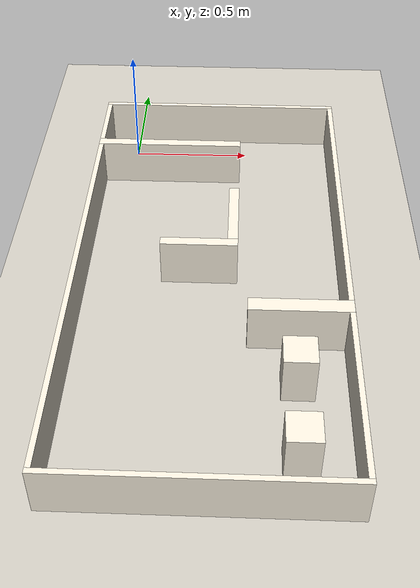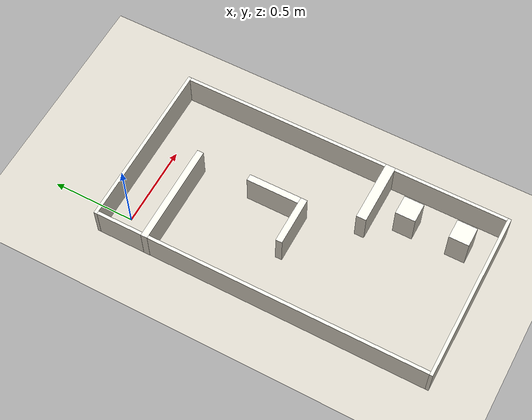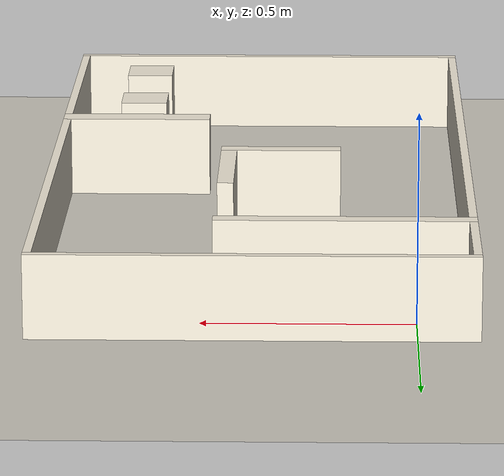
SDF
<?xml version="1.0" ?>
<sdf version="1.8">
  <world name="world2">
    <physics name="1ms" type="ignored">
      <max_step_size>0.001</max_step_size>
      <real_time_factor>1.0</real_time_factor>
    </physics>

    <plugin filename="gz-sim-physics-system" name="gz::sim::systems::Physics"/>
    <plugin filename="gz-sim-sensors-system" name="gz::sim::systems::Sensors">
      <render_engine>ogre2</render_engine>
    </plugin>
    <plugin filename="gz-sim-user-commands-system" name="gz::sim::systems::UserCommands"/>
    <plugin filename="gz-sim-scene-broadcaster-system" name="gz::sim::systems::SceneBroadcaster"/>
    <plugin filename="gz-sim-imu-system" name="gz::sim::systems::Imu"/>

    <light type="directional" name="sun">
      <cast_shadows>true</cast_shadows>
      <pose>10 10 12 0 0 0</pose>
      <diffuse>0.9 0.9 0.9 1</diffuse>
      <specular>0.6 0.6 0.6 1</specular>
      <attenuation>
        <range>1000</range>
        <constant>0.9</constant>
        <linear>0.01</linear>
        <quadratic>0.001</quadratic>
      </attenuation>
      <direction>-0.5 -0.3 -0.9</direction>
    </light>

    <model name="ground_plane">
      <static>true</static>
      <link name="link">
        <collision name="collision">
          <geometry><plane><normal>0 0 1</normal><size>100 100</size></plane></geometry>
        </collision>
        <visual name="visual">
          <geometry><plane><normal>0 0 1</normal><size>100 100</size></plane></geometry>
          <material><ambient>0.78 0.76 0.72 1</ambient><diffuse>0.82 0.80 0.76 1</diffuse></material>
        </visual>
      </link>
    </model>

    <model name="world2_env">
      <static>true</static>
      <link name="link">
        <pose>0 0 0 0 0 0</pose>
        <collision name="wall_0000">
          <pose>0.3760 0.1210 0.1000 0 0 0</pose>
          <geometry><box><size>1.0400 0.0200 0.2000</size></box></geometry>
        </collision>
        <visual name="wall_0000_v">
          <pose>0.3760 0.1210 0.1000 0 0 0</pose>
          <geometry><box><size>1.0400 0.0200 0.2000</size></box></geometry>
          <material><ambient>0.96 0.93 0.85 1</ambient><diffuse>0.98 0.95 0.88 1</diffuse></material>
        </visual>
        <collision name="wall_0001">
          <pose>-0.1340 -0.0290 0.1000 0 0 0</pose>
          <geometry><box><size>0.0200 0.2800 0.2000</size></box></geometry>
        </collision>
        <visual name="wall_0001_v">
          <pose>-0.1340 -0.0290 0.1000 0 0 0</pose>
          <geometry><box><size>0.0200 0.2800 0.2000</size></box></geometry>
          <material><ambient>0.96 0.93 0.85 1</ambient><diffuse>0.98 0.95 0.88 1</diffuse></material>
        </visual>
        <collision name="wall_0002">
          <pose>0.1660 -0.1890 0.1000 0 0 0</pose>
          <geometry><box><size>0.6200 0.0400 0.2000</size></box></geometry>
        </collision>
        <visual name="wall_0002_v">
          <pose>0.1660 -0.1890 0.1000 0 0 0</pose>
          <geometry><box><size>0.6200 0.0400 0.2000</size></box></geometry>
          <material><ambient>0.96 0.93 0.85 1</ambient><diffuse>0.98 0.95 0.88 1</diffuse></material>
        </visual>
        <collision name="wall_0003">
          <pose>0.4560 -0.6690 0.1000 0 0 0</pose>
          <geometry><box><size>0.0400 0.3200 0.2000</size></box></geometry>
        </collision>
        <visual name="wall_0003_v">
          <pose>0.4560 -0.6690 0.1000 0 0 0</pose>
          <geometry><box><size>0.0400 0.3200 0.2000</size></box></geometry>
          <material><ambient>0.96 0.93 0.85 1</ambient><diffuse>0.98 0.95 0.88 1</diffuse></material>
        </visual>
        <collision name="wall_0004">
          <pose>0.3260 -0.8490 0.1000 0 0 0</pose>
          <geometry><box><size>0.3000 0.0400 0.2000</size></box></geometry>
        </collision>
        <visual name="wall_0004_v">
          <pose>0.3260 -0.8490 0.1000 0 0 0</pose>
          <geometry><box><size>0.3000 0.0400 0.2000</size></box></geometry>
          <material><ambient>0.96 0.93 0.85 1</ambient><diffuse>0.98 0.95 0.88 1</diffuse></material>
        </visual>
        <collision name="wall_0005">
          <pose>0.8860 -0.5190 0.1000 0 0 0</pose>
          <geometry><box><size>0.0200 1.2600 0.2000</size></box></geometry>
        </collision>
        <visual name="wall_0005_v">
          <pose>0.8860 -0.5190 0.1000 0 0 0</pose>
          <geometry><box><size>0.0200 1.2600 0.2000</size></box></geometry>
          <material><ambient>0.96 0.93 0.85 1</ambient><diffuse>0.98 0.95 0.88 1</diffuse></material>
        </visual>
        <collision name="wall_0006">
          <pose>0.7060 -1.1790 0.1000 0 0 0</pose>
          <geometry><box><size>0.3800 0.0600 0.2000</size></box></geometry>
        </collision>
        <visual name="wall_0006_v">
          <pose>0.7060 -1.1790 0.1000 0 0 0</pose>
          <geometry><box><size>0.3800 0.0600 0.2000</size></box></geometry>
          <material><ambient>0.96 0.93 0.85 1</ambient><diffuse>0.98 0.95 0.88 1</diffuse></material>
        </visual>
        <collision name="wall_0007">
          <pose>0.6960 -1.3890 0.1000 0 0 0</pose>
          <geometry><box><size>0.1200 0.1200 0.2000</size></box></geometry>
        </collision>
        <visual name="wall_0007_v">
          <pose>0.6960 -1.3890 0.1000 0 0 0</pose>
          <geometry><box><size>0.1200 0.1200 0.2000</size></box></geometry>
          <material><ambient>0.96 0.93 0.85 1</ambient><diffuse>0.98 0.95 0.88 1</diffuse></material>
        </visual>
        <collision name="wall_0008">
          <pose>0.6960 -1.7090 0.1000 0 0 0</pose>
          <geometry><box><size>0.1200 0.1200 0.2000</size></box></geometry>
        </collision>
        <visual name="wall_0008_v">
          <pose>0.6960 -1.7090 0.1000 0 0 0</pose>
          <geometry><box><size>0.1200 0.1200 0.2000</size></box></geometry>
          <material><ambient>0.96 0.93 0.85 1</ambient><diffuse>0.98 0.95 0.88 1</diffuse></material>
        </visual>
        <collision name="wall_0009">
          <pose>-0.1340 -1.0490 0.1000 0 0 0</pose>
          <geometry><box><size>0.0200 1.6800 0.2000</size></box></geometry>
        </collision>
        <visual name="wall_0009_v">
          <pose>-0.1340 -1.0490 0.1000 0 0 0</pose>
          <geometry><box><size>0.0200 1.6800 0.2000</size></box></geometry>
          <material><ambient>0.96 0.93 0.85 1</ambient><diffuse>0.98 0.95 0.88 1</diffuse></material>
        </visual>
        <collision name="wall_0010">
          <pose>0.8860 -1.5490 0.1000 0 0 0</pose>
          <geometry><box><size>0.0200 0.6800 0.2000</size></box></geometry>
        </collision>
        <visual name="wall_0010_v">
          <pose>0.8860 -1.5490 0.1000 0 0 0</pose>
          <geometry><box><size>0.0200 0.6800 0.2000</size></box></geometry>
          <material><ambient>0.96 0.93 0.85 1</ambient><diffuse>0.98 0.95 0.88 1</diffuse></material>
        </visual>
        <collision name="wall_0011">
          <pose>0.3760 -1.8990 0.1000 0 0 0</pose>
          <geometry><box><size>1.0400 0.0200 0.2000</size></box></geometry>
        </collision>
        <visual name="wall_0011_v">
          <pose>0.3760 -1.8990 0.1000 0 0 0</pose>
          <geometry><box><size>1.0400 0.0200 0.2000</size></box></geometry>
          <material><ambient>0.96 0.93 0.85 1</ambient><diffuse>0.98 0.95 0.88 1</diffuse></material>
        </visual>
      </link>
    </model>
  </world>
</sdf>
